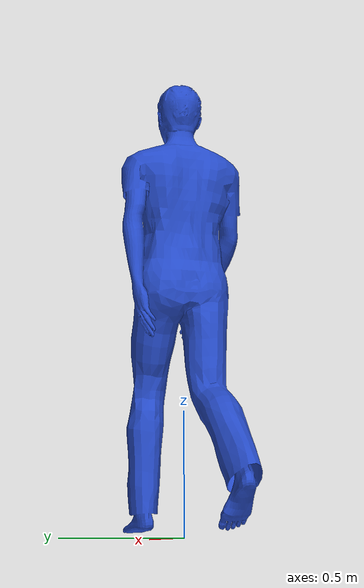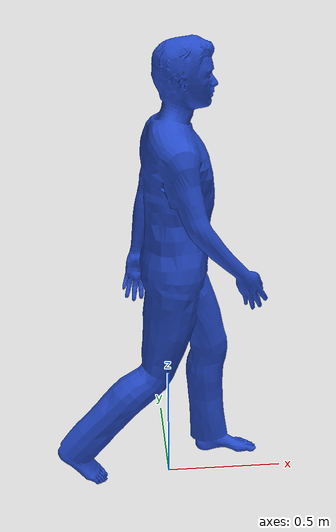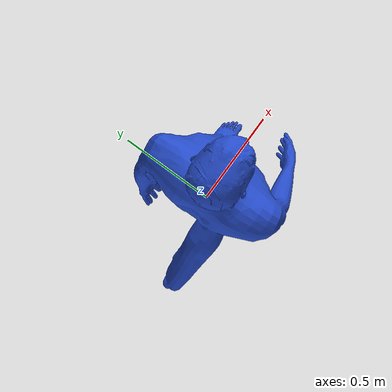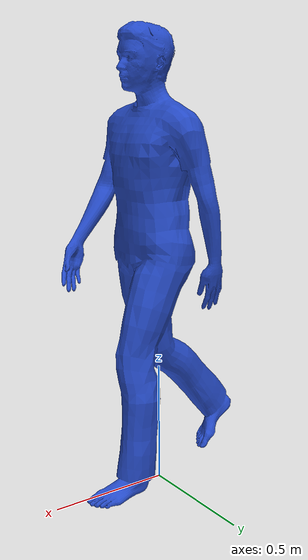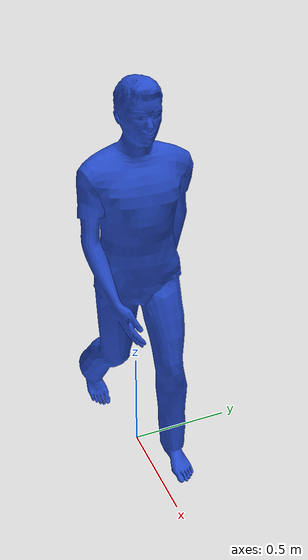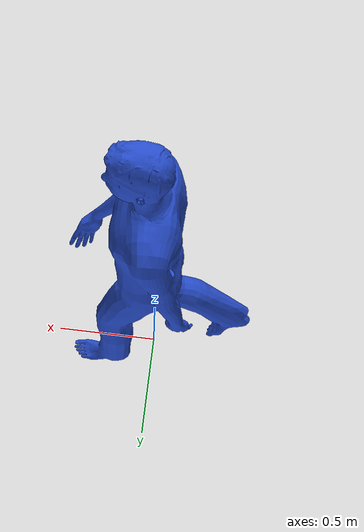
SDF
<?xml version="1.0" ?>
<sdf version="1.5">

<model name="actor_model">
  <pose>0 0 0 0 0 0</pose>
  <link name="link">
    <collision name="collision_base">
      <pose>0 0 0 0 0 1.57</pose>
      <geometry>
        <box>
          <size>.6 .9 0.001</size>
        </box>
      </geometry>
    </collision>

    <collision name="collision_model">
      <pose>0 0 0 0 0 1.57</pose>
      <geometry>
        <mesh>
          <uri>model://person_walking/meshes/walking.dae</uri>
        </mesh>
      </geometry>
      <!-- To reduce the computations, cancel the stiffness configuration of agents -->
      <surface>
        <contact>
          <ode>
            <kp>9999</kp>
            <kd>1</kd>
          </ode>
        </contact>
      </surface>
    </collision>

    <visual name="visual">
      <pose>0 0 0 0 0 1.57</pose>
      <geometry>
        <mesh>
          <uri>model://person_walking/meshes/walking.dae</uri>
        </mesh>
      </geometry>
      <material>
        <script>
          <uri>file://media/materials/scripts/gazebo.material</uri>
          <name>Gazebo/LightBlueLaser</name> <!-- 使用Gazebo默认的红色材质 -->
        </script>
      </material>
    </visual>
  </link>
</model>

</sdf>
